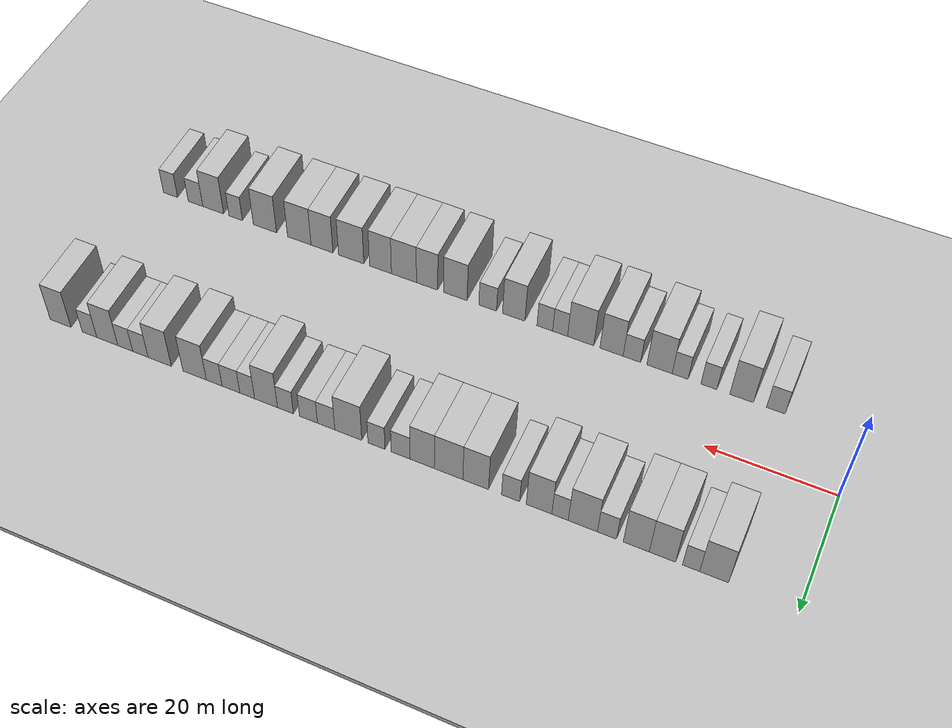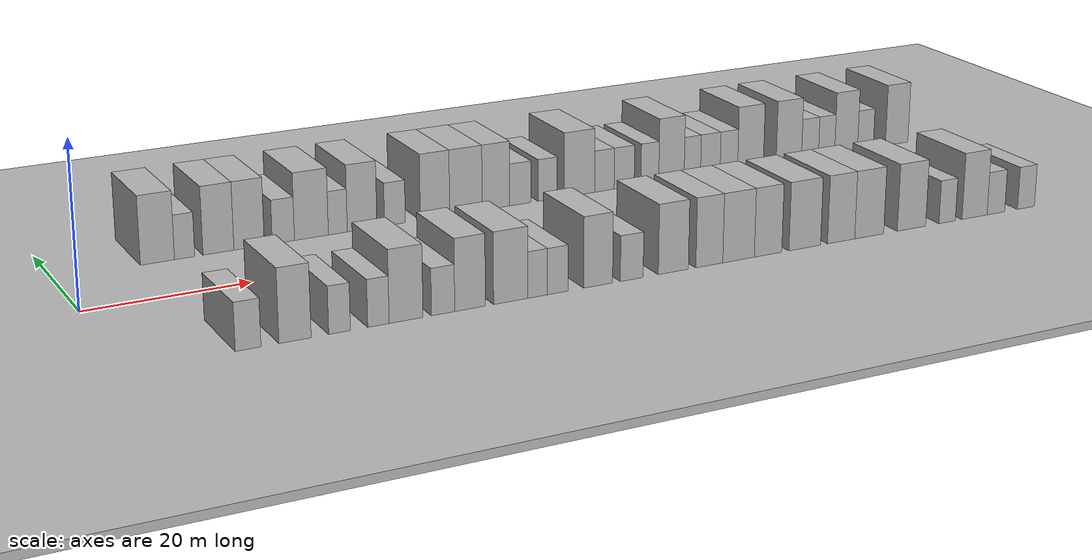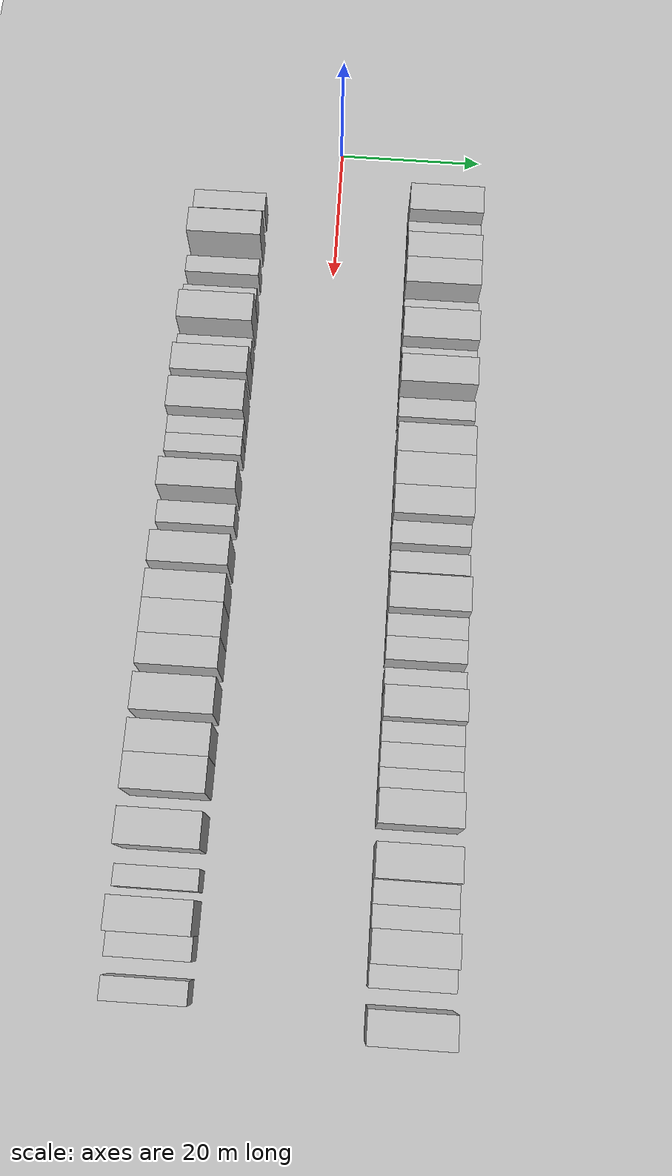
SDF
<sdf version="1.6">
 <world name="default">
  <include><name>ground_plane_1</name><uri>model://HANNAS_ground_plane</uri></include>
  <include>
   <name>ground_plane_2</name>
   <uri>model://HANNAS_ground_plane</uri>
   <pose>100 0 0  0 0 0</pose>
  </include>
  <model name="building_1">
   <static>1</static>
   <pose>12.0635 15.0000 0 0.000000 0.000000 1.570796</pose>
   <link name="link">
    <pose>0 0 4.50 0 0 0</pose>
    <collision name="collision"><geometry><box><size>10.0000 4.1269 9.0000</size></box></geometry></collision>
    <visual name="visual">
     <cast_shadows>0</cast_shadows>
     <geometry><box><size>10.0000 4.1269 9.0000</size></box></geometry>
     <material>
      <script>
       <uri>model://HANNAS_wall/materials/scripts</uri>
       <uri>model://HANNAS_wall/materials/textures</uri>
       <name>vrc/HANNAS_wall</name>
      </script>
     </material>
    </visual>
   </link>
  </model>
  <model name="building_2">
   <static>1</static>
   <pose>15.3622 15.0000 0 0.000000 0.000000 1.570796</pose>
   <link name="link">
    <pose>0 0 3.00 0 0 0</pose>
    <collision name="collision"><geometry><box><size>10.0000 2.4706 6.0000</size></box></geometry></collision>
    <visual name="visual">
     <cast_shadows>0</cast_shadows>
     <geometry><box><size>10.0000 2.4706 6.0000</size></box></geometry>
     <material>
      <script>
       <uri>model://HANNAS_wall/materials/scripts</uri>
       <uri>model://HANNAS_wall/materials/textures</uri>
       <name>vrc/HANNAS_wall</name>
      </script>
     </material>
    </visual>
   </link>
  </model>
  <model name="building_3">
   <static>1</static>
   <pose>19.5096 15.0000 0 0.000000 0.000000 1.570796</pose>
   <link name="link">
    <pose>0 0 4.50 0 0 0</pose>
    <collision name="collision"><geometry><box><size>10.0000 3.8242 9.0000</size></box></geometry></collision>
    <visual name="visual">
     <cast_shadows>0</cast_shadows>
     <geometry><box><size>10.0000 3.8242 9.0000</size></box></geometry>
     <material>
      <script>
       <uri>model://HANNAS_wall/materials/scripts</uri>
       <uri>model://HANNAS_wall/materials/textures</uri>
       <name>vrc/HANNAS_wall</name>
      </script>
     </material>
    </visual>
   </link>
  </model>
  <model name="building_4">
   <static>1</static>
   <pose>23.3249 15.0000 0 0.000000 0.000000 1.570796</pose>
   <link name="link">
    <pose>0 0 4.50 0 0 0</pose>
    <collision name="collision"><geometry><box><size>10.0000 3.8064 9.0000</size></box></geometry></collision>
    <visual name="visual">
     <cast_shadows>0</cast_shadows>
     <geometry><box><size>10.0000 3.8064 9.0000</size></box></geometry>
     <material>
      <script>
       <uri>model://HANNAS_wall/materials/scripts</uri>
       <uri>model://HANNAS_wall/materials/textures</uri>
       <name>vrc/HANNAS_wall</name>
      </script>
     </material>
    </visual>
   </link>
  </model>
  <model name="building_5">
   <static>1</static>
   <pose>27.6384 15.0000 0 0.000000 0.000000 1.570796</pose>
   <link name="link">
    <pose>0 0 3.00 0 0 0</pose>
    <collision name="collision"><geometry><box><size>10.0000 2.8205 6.0000</size></box></geometry></collision>
    <visual name="visual">
     <cast_shadows>0</cast_shadows>
     <geometry><box><size>10.0000 2.8205 6.0000</size></box></geometry>
     <material>
      <script>
       <uri>model://HANNAS_wall/materials/scripts</uri>
       <uri>model://HANNAS_wall/materials/textures</uri>
       <name>vrc/HANNAS_wall</name>
      </script>
     </material>
    </visual>
   </link>
  </model>
  <model name="building_6">
   <static>1</static>
   <pose>31.2251 15.0000 0 0.000000 0.000000 1.570796</pose>
   <link name="link">
    <pose>0 0 4.50 0 0 0</pose>
    <collision name="collision"><geometry><box><size>10.0000 4.3530 9.0000</size></box></geometry></collision>
    <visual name="visual">
     <cast_shadows>0</cast_shadows>
     <geometry><box><size>10.0000 4.3530 9.0000</size></box></geometry>
     <material>
      <script>
       <uri>model://HANNAS_wall/materials/scripts</uri>
       <uri>model://HANNAS_wall/materials/textures</uri>
       <name>vrc/HANNAS_wall</name>
      </script>
     </material>
    </visual>
   </link>
  </model>
  <model name="building_7">
   <static>1</static>
   <pose>34.6320 15.0000 0 0.000000 0.000000 1.570796</pose>
   <link name="link">
    <pose>0 0 3.00 0 0 0</pose>
    <collision name="collision"><geometry><box><size>10.0000 2.4608 6.0000</size></box></geometry></collision>
    <visual name="visual">
     <cast_shadows>0</cast_shadows>
     <geometry><box><size>10.0000 2.4608 6.0000</size></box></geometry>
     <material>
      <script>
       <uri>model://HANNAS_wall/materials/scripts</uri>
       <uri>model://HANNAS_wall/materials/textures</uri>
       <name>vrc/HANNAS_wall</name>
      </script>
     </material>
    </visual>
   </link>
  </model>
  <model name="building_8">
   <static>1</static>
   <pose>37.8067 15.0000 0 0.000000 0.000000 1.570796</pose>
   <link name="link">
    <pose>0 0 4.50 0 0 0</pose>
    <collision name="collision"><geometry><box><size>10.0000 3.8886 9.0000</size></box></geometry></collision>
    <visual name="visual">
     <cast_shadows>0</cast_shadows>
     <geometry><box><size>10.0000 3.8886 9.0000</size></box></geometry>
     <material>
      <script>
       <uri>model://HANNAS_wall/materials/scripts</uri>
       <uri>model://HANNAS_wall/materials/textures</uri>
       <name>vrc/HANNAS_wall</name>
      </script>
     </material>
    </visual>
   </link>
  </model>
  <model name="building_9">
   <static>1</static>
   <pose>42.1384 15.0000 0 0.000000 0.000000 1.570796</pose>
   <link name="link">
    <pose>0 0 3.00 0 0 0</pose>
    <collision name="collision"><geometry><box><size>10.0000 2.7749 6.0000</size></box></geometry></collision>
    <visual name="visual">
     <cast_shadows>0</cast_shadows>
     <geometry><box><size>10.0000 2.7749 6.0000</size></box></geometry>
     <material>
      <script>
       <uri>model://HANNAS_wall/materials/scripts</uri>
       <uri>model://HANNAS_wall/materials/textures</uri>
       <name>vrc/HANNAS_wall</name>
      </script>
     </material>
    </visual>
   </link>
  </model>
  <model name="building_10">
   <static>1</static>
   <pose>47.5163 15.0000 0 0.000000 0.000000 1.570796</pose>
   <link name="link">
    <pose>0 0 4.50 0 0 0</pose>
    <collision name="collision"><geometry><box><size>10.0000 3.9808 9.0000</size></box></geometry></collision>
    <visual name="visual">
     <cast_shadows>0</cast_shadows>
     <geometry><box><size>10.0000 3.9808 9.0000</size></box></geometry>
     <material>
      <script>
       <uri>model://HANNAS_wall/materials/scripts</uri>
       <uri>model://HANNAS_wall/materials/textures</uri>
       <name>vrc/HANNAS_wall</name>
      </script>
     </material>
    </visual>
   </link>
  </model>
  <model name="building_11">
   <static>1</static>
   <pose>51.7350 15.0000 0 0.000000 0.000000 1.570796</pose>
   <link name="link">
    <pose>0 0 4.50 0 0 0</pose>
    <collision name="collision"><geometry><box><size>10.0000 4.4566 9.0000</size></box></geometry></collision>
    <visual name="visual">
     <cast_shadows>0</cast_shadows>
     <geometry><box><size>10.0000 4.4566 9.0000</size></box></geometry>
     <material>
      <script>
       <uri>model://HANNAS_wall/materials/scripts</uri>
       <uri>model://HANNAS_wall/materials/textures</uri>
       <name>vrc/HANNAS_wall</name>
      </script>
     </material>
    </visual>
   </link>
  </model>
  <model name="building_12">
   <static>1</static>
   <pose>55.8778 15.0000 0 0.000000 0.000000 1.570796</pose>
   <link name="link">
    <pose>0 0 4.50 0 0 0</pose>
    <collision name="collision"><geometry><box><size>10.0000 3.8290 9.0000</size></box></geometry></collision>
    <visual name="visual">
     <cast_shadows>0</cast_shadows>
     <geometry><box><size>10.0000 3.8290 9.0000</size></box></geometry>
     <material>
      <script>
       <uri>model://HANNAS_wall/materials/scripts</uri>
       <uri>model://HANNAS_wall/materials/textures</uri>
       <name>vrc/HANNAS_wall</name>
      </script>
     </material>
    </visual>
   </link>
  </model>
  <model name="building_13">
   <static>1</static>
   <pose>59.2881 15.0000 0 0.000000 0.000000 1.570796</pose>
   <link name="link">
    <pose>0 0 3.00 0 0 0</pose>
    <collision name="collision"><geometry><box><size>10.0000 2.9917 6.0000</size></box></geometry></collision>
    <visual name="visual">
     <cast_shadows>0</cast_shadows>
     <geometry><box><size>10.0000 2.9917 6.0000</size></box></geometry>
     <material>
      <script>
       <uri>model://HANNAS_wall/materials/scripts</uri>
       <uri>model://HANNAS_wall/materials/textures</uri>
       <name>vrc/HANNAS_wall</name>
      </script>
     </material>
    </visual>
   </link>
  </model>
  <model name="building_14">
   <static>1</static>
   <pose>63.1467 15.0000 0 0.000000 0.000000 1.570796</pose>
   <link name="link">
    <pose>0 0 3.00 0 0 0</pose>
    <collision name="collision"><geometry><box><size>10.0000 2.7255 6.0000</size></box></geometry></collision>
    <visual name="visual">
     <cast_shadows>0</cast_shadows>
     <geometry><box><size>10.0000 2.7255 6.0000</size></box></geometry>
     <material>
      <script>
       <uri>model://HANNAS_wall/materials/scripts</uri>
       <uri>model://HANNAS_wall/materials/textures</uri>
       <name>vrc/HANNAS_wall</name>
      </script>
     </material>
    </visual>
   </link>
  </model>
  <model name="building_15">
   <static>1</static>
   <pose>67.6965 15.0000 0 0.000000 0.000000 1.570796</pose>
   <link name="link">
    <pose>0 0 4.50 0 0 0</pose>
    <collision name="collision"><geometry><box><size>10.0000 4.3741 9.0000</size></box></geometry></collision>
    <visual name="visual">
     <cast_shadows>0</cast_shadows>
     <geometry><box><size>10.0000 4.3741 9.0000</size></box></geometry>
     <material>
      <script>
       <uri>model://HANNAS_wall/materials/scripts</uri>
       <uri>model://HANNAS_wall/materials/textures</uri>
       <name>vrc/HANNAS_wall</name>
      </script>
     </material>
    </visual>
   </link>
  </model>
  <model name="building_16">
   <static>1</static>
   <pose>71.3023 15.0000 0 0.000000 0.000000 1.570796</pose>
   <link name="link">
    <pose>0 0 3.00 0 0 0</pose>
    <collision name="collision"><geometry><box><size>10.0000 2.8375 6.0000</size></box></geometry></collision>
    <visual name="visual">
     <cast_shadows>0</cast_shadows>
     <geometry><box><size>10.0000 2.8375 6.0000</size></box></geometry>
     <material>
      <script>
       <uri>model://HANNAS_wall/materials/scripts</uri>
       <uri>model://HANNAS_wall/materials/textures</uri>
       <name>vrc/HANNAS_wall</name>
      </script>
     </material>
    </visual>
   </link>
  </model>
  <model name="building_17">
   <static>1</static>
   <pose>74.1997 15.0000 0 0.000000 0.000000 1.570796</pose>
   <link name="link">
    <pose>0 0 3.00 0 0 0</pose>
    <collision name="collision"><geometry><box><size>10.0000 2.9573 6.0000</size></box></geometry></collision>
    <visual name="visual">
     <cast_shadows>0</cast_shadows>
     <geometry><box><size>10.0000 2.9573 6.0000</size></box></geometry>
     <material>
      <script>
       <uri>model://HANNAS_wall/materials/scripts</uri>
       <uri>model://HANNAS_wall/materials/textures</uri>
       <name>vrc/HANNAS_wall</name>
      </script>
     </material>
    </visual>
   </link>
  </model>
  <model name="building_18">
   <static>1</static>
   <pose>78.0015 15.0000 0 0.000000 0.000000 1.570796</pose>
   <link name="link">
    <pose>0 0 3.00 0 0 0</pose>
    <collision name="collision"><geometry><box><size>10.0000 2.6463 6.0000</size></box></geometry></collision>
    <visual name="visual">
     <cast_shadows>0</cast_shadows>
     <geometry><box><size>10.0000 2.6463 6.0000</size></box></geometry>
     <material>
      <script>
       <uri>model://HANNAS_wall/materials/scripts</uri>
       <uri>model://HANNAS_wall/materials/textures</uri>
       <name>vrc/HANNAS_wall</name>
      </script>
     </material>
    </visual>
   </link>
  </model>
  <model name="building_19">
   <static>1</static>
   <pose>81.2366 15.0000 0 0.000000 0.000000 1.570796</pose>
   <link name="link">
    <pose>0 0 4.50 0 0 0</pose>
    <collision name="collision"><geometry><box><size>10.0000 3.8238 9.0000</size></box></geometry></collision>
    <visual name="visual">
     <cast_shadows>0</cast_shadows>
     <geometry><box><size>10.0000 3.8238 9.0000</size></box></geometry>
     <material>
      <script>
       <uri>model://HANNAS_wall/materials/scripts</uri>
       <uri>model://HANNAS_wall/materials/textures</uri>
       <name>vrc/HANNAS_wall</name>
      </script>
     </material>
    </visual>
   </link>
  </model>
  <model name="building_20">
   <static>1</static>
   <pose>84.3906 15.0000 0 0.000000 0.000000 1.570796</pose>
   <link name="link">
    <pose>0 0 3.00 0 0 0</pose>
    <collision name="collision"><geometry><box><size>10.0000 2.4841 6.0000</size></box></geometry></collision>
    <visual name="visual">
     <cast_shadows>0</cast_shadows>
     <geometry><box><size>10.0000 2.4841 6.0000</size></box></geometry>
     <material>
      <script>
       <uri>model://HANNAS_wall/materials/scripts</uri>
       <uri>model://HANNAS_wall/materials/textures</uri>
       <name>vrc/HANNAS_wall</name>
      </script>
     </material>
    </visual>
   </link>
  </model>
  <model name="building_21">
   <static>1</static>
   <pose>87.1256 15.0000 0 0.000000 0.000000 1.570796</pose>
   <link name="link">
    <pose>0 0 3.00 0 0 0</pose>
    <collision name="collision"><geometry><box><size>10.0000 2.9860 6.0000</size></box></geometry></collision>
    <visual name="visual">
     <cast_shadows>0</cast_shadows>
     <geometry><box><size>10.0000 2.9860 6.0000</size></box></geometry>
     <material>
      <script>
       <uri>model://HANNAS_wall/materials/scripts</uri>
       <uri>model://HANNAS_wall/materials/textures</uri>
       <name>vrc/HANNAS_wall</name>
      </script>
     </material>
    </visual>
   </link>
  </model>
  <model name="building_22">
   <static>1</static>
   <pose>89.9670 15.0000 0 0.000000 0.000000 1.570796</pose>
   <link name="link">
    <pose>0 0 3.00 0 0 0</pose>
    <collision name="collision"><geometry><box><size>10.0000 2.6968 6.0000</size></box></geometry></collision>
    <visual name="visual">
     <cast_shadows>0</cast_shadows>
     <geometry><box><size>10.0000 2.6968 6.0000</size></box></geometry>
     <material>
      <script>
       <uri>model://HANNAS_wall/materials/scripts</uri>
       <uri>model://HANNAS_wall/materials/textures</uri>
       <name>vrc/HANNAS_wall</name>
      </script>
     </material>
    </visual>
   </link>
  </model>
  <model name="building_23">
   <static>1</static>
   <pose>93.3270 15.0000 0 0.000000 0.000000 1.570796</pose>
   <link name="link">
    <pose>0 0 4.50 0 0 0</pose>
    <collision name="collision"><geometry><box><size>10.0000 4.0232 9.0000</size></box></geometry></collision>
    <visual name="visual">
     <cast_shadows>0</cast_shadows>
     <geometry><box><size>10.0000 4.0232 9.0000</size></box></geometry>
     <material>
      <script>
       <uri>model://HANNAS_wall/materials/scripts</uri>
       <uri>model://HANNAS_wall/materials/textures</uri>
       <name>vrc/HANNAS_wall</name>
      </script>
     </material>
    </visual>
   </link>
  </model>
  <model name="building_24">
   <static>1</static>
   <pose>99.3500 15.0000 0 0.000000 0.000000 1.570796</pose>
   <link name="link">
    <pose>0 0 4.50 0 0 0</pose>
    <collision name="collision"><geometry><box><size>10.0000 4.0227 9.0000</size></box></geometry></collision>
    <visual name="visual">
     <cast_shadows>0</cast_shadows>
     <geometry><box><size>10.0000 4.0227 9.0000</size></box></geometry>
     <material>
      <script>
       <uri>model://HANNAS_wall/materials/scripts</uri>
       <uri>model://HANNAS_wall/materials/textures</uri>
       <name>vrc/HANNAS_wall</name>
      </script>
     </material>
    </visual>
   </link>
  </model>
  <model name="building_25">
   <static>1</static>
   <pose>102.7177 15.0000 0 0.000000 0.000000 1.570796</pose>
   <link name="link">
    <pose>0 0 3.00 0 0 0</pose>
    <collision name="collision"><geometry><box><size>10.0000 2.7128 6.0000</size></box></geometry></collision>
    <visual name="visual">
     <cast_shadows>0</cast_shadows>
     <geometry><box><size>10.0000 2.7128 6.0000</size></box></geometry>
     <material>
      <script>
       <uri>model://HANNAS_wall/materials/scripts</uri>
       <uri>model://HANNAS_wall/materials/textures</uri>
       <name>vrc/HANNAS_wall</name>
      </script>
     </material>
    </visual>
   </link>
  </model>
  <model name="building_26">
   <static>1</static>
   <pose>105.3841 15.0000 0 0.000000 0.000000 1.570796</pose>
   <link name="link">
    <pose>0 0 3.00 0 0 0</pose>
    <collision name="collision"><geometry><box><size>10.0000 2.6202 6.0000</size></box></geometry></collision>
    <visual name="visual">
     <cast_shadows>0</cast_shadows>
     <geometry><box><size>10.0000 2.6202 6.0000</size></box></geometry>
     <material>
      <script>
       <uri>model://HANNAS_wall/materials/scripts</uri>
       <uri>model://HANNAS_wall/materials/textures</uri>
       <name>vrc/HANNAS_wall</name>
      </script>
     </material>
    </visual>
   </link>
  </model>
  <model name="building_27">
   <static>1</static>
   <pose>108.5547 15.0000 0 0.000000 0.000000 1.570796</pose>
   <link name="link">
    <pose>0 0 4.50 0 0 0</pose>
    <collision name="collision"><geometry><box><size>10.0000 3.7210 9.0000</size></box></geometry></collision>
    <visual name="visual">
     <cast_shadows>0</cast_shadows>
     <geometry><box><size>10.0000 3.7210 9.0000</size></box></geometry>
     <material>
      <script>
       <uri>model://HANNAS_wall/materials/scripts</uri>
       <uri>model://HANNAS_wall/materials/textures</uri>
       <name>vrc/HANNAS_wall</name>
      </script>
     </material>
    </visual>
   </link>
  </model>
  <model name="building_28">
   <static>1</static>
   <pose>111.7187 15.0000 0 0.000000 0.000000 1.570796</pose>
   <link name="link">
    <pose>0 0 3.00 0 0 0</pose>
    <collision name="collision"><geometry><box><size>10.0000 2.6071 6.0000</size></box></geometry></collision>
    <visual name="visual">
     <cast_shadows>0</cast_shadows>
     <geometry><box><size>10.0000 2.6071 6.0000</size></box></geometry>
     <material>
      <script>
       <uri>model://HANNAS_wall/materials/scripts</uri>
       <uri>model://HANNAS_wall/materials/textures</uri>
       <name>vrc/HANNAS_wall</name>
      </script>
     </material>
    </visual>
   </link>
  </model>
  <model name="building_29">
   <static>1</static>
   <pose>116.8964 15.0000 0 0.000000 0.000000 1.570796</pose>
   <link name="link">
    <pose>0 0 4.50 0 0 0</pose>
    <collision name="collision"><geometry><box><size>10.0000 3.7483 9.0000</size></box></geometry></collision>
    <visual name="visual">
     <cast_shadows>0</cast_shadows>
     <geometry><box><size>10.0000 3.7483 9.0000</size></box></geometry>
     <material>
      <script>
       <uri>model://HANNAS_wall/materials/scripts</uri>
       <uri>model://HANNAS_wall/materials/textures</uri>
       <name>vrc/HANNAS_wall</name>
      </script>
     </material>
    </visual>
   </link>
  </model>
  <model name="building_56">
   <static>1</static>
   <pose>12.4276 -15.0000 0 0.000000 0.000000 1.570796</pose>
   <link name="link">
    <pose>0 0 3.00 0 0 0</pose>
    <collision name="collision"><geometry><box><size>10.0000 2.8552 6.0000</size></box></geometry></collision>
    <visual name="visual">
     <cast_shadows>0</cast_shadows>
     <geometry><box><size>10.0000 2.8552 6.0000</size></box></geometry>
     <material>
      <script>
       <uri>model://HANNAS_wall/materials/scripts</uri>
       <uri>model://HANNAS_wall/materials/textures</uri>
       <name>vrc/HANNAS_wall</name>
      </script>
     </material>
    </visual>
   </link>
  </model>
  <model name="building_57">
   <static>1</static>
   <pose>17.6760 -15.0000 0 0.000000 0.000000 1.570796</pose>
   <link name="link">
    <pose>0 0 4.50 0 0 0</pose>
    <collision name="collision"><geometry><box><size>10.0000 3.6416 9.0000</size></box></geometry></collision>
    <visual name="visual">
     <cast_shadows>0</cast_shadows>
     <geometry><box><size>10.0000 3.6416 9.0000</size></box></geometry>
     <material>
      <script>
       <uri>model://HANNAS_wall/materials/scripts</uri>
       <uri>model://HANNAS_wall/materials/textures</uri>
       <name>vrc/HANNAS_wall</name>
      </script>
     </material>
    </visual>
   </link>
  </model>
  <model name="building_58">
   <static>1</static>
   <pose>22.7484 -15.0000 0 0.000000 0.000000 1.570796</pose>
   <link name="link">
    <pose>0 0 3.00 0 0 0</pose>
    <collision name="collision"><geometry><box><size>10.0000 2.5031 6.0000</size></box></geometry></collision>
    <visual name="visual">
     <cast_shadows>0</cast_shadows>
     <geometry><box><size>10.0000 2.5031 6.0000</size></box></geometry>
     <material>
      <script>
       <uri>model://HANNAS_wall/materials/scripts</uri>
       <uri>model://HANNAS_wall/materials/textures</uri>
       <name>vrc/HANNAS_wall</name>
      </script>
     </material>
    </visual>
   </link>
  </model>
  <model name="building_59">
   <static>1</static>
   <pose>27.2496 -15.0000 0 0.000000 0.000000 1.570796</pose>
   <link name="link">
    <pose>0 0 3.00 0 0 0</pose>
    <collision name="collision"><geometry><box><size>10.0000 2.4995 6.0000</size></box></geometry></collision>
    <visual name="visual">
     <cast_shadows>0</cast_shadows>
     <geometry><box><size>10.0000 2.4995 6.0000</size></box></geometry>
     <material>
      <script>
       <uri>model://HANNAS_wall/materials/scripts</uri>
       <uri>model://HANNAS_wall/materials/textures</uri>
       <name>vrc/HANNAS_wall</name>
      </script>
     </material>
    </visual>
   </link>
  </model>
  <model name="building_60">
   <static>1</static>
   <pose>30.5056 -15.0000 0 0.000000 0.000000 1.570796</pose>
   <link name="link">
    <pose>0 0 4.50 0 0 0</pose>
    <collision name="collision"><geometry><box><size>10.0000 4.0126 9.0000</size></box></geometry></collision>
    <visual name="visual">
     <cast_shadows>0</cast_shadows>
     <geometry><box><size>10.0000 4.0126 9.0000</size></box></geometry>
     <material>
      <script>
       <uri>model://HANNAS_wall/materials/scripts</uri>
       <uri>model://HANNAS_wall/materials/textures</uri>
       <name>vrc/HANNAS_wall</name>
      </script>
     </material>
    </visual>
   </link>
  </model>
  <model name="building_61">
   <static>1</static>
   <pose>34.9126 -15.0000 0 0.000000 0.000000 1.570796</pose>
   <link name="link">
    <pose>0 0 3.00 0 0 0</pose>
    <collision name="collision"><geometry><box><size>10.0000 2.8013 6.0000</size></box></geometry></collision>
    <visual name="visual">
     <cast_shadows>0</cast_shadows>
     <geometry><box><size>10.0000 2.8013 6.0000</size></box></geometry>
     <material>
      <script>
       <uri>model://HANNAS_wall/materials/scripts</uri>
       <uri>model://HANNAS_wall/materials/textures</uri>
       <name>vrc/HANNAS_wall</name>
      </script>
     </material>
    </visual>
   </link>
  </model>
  <model name="building_62">
   <static>1</static>
   <pose>38.1787 -15.0000 0 0.000000 0.000000 1.570796</pose>
   <link name="link">
    <pose>0 0 4.50 0 0 0</pose>
    <collision name="collision"><geometry><box><size>10.0000 3.7309 9.0000</size></box></geometry></collision>
    <visual name="visual">
     <cast_shadows>0</cast_shadows>
     <geometry><box><size>10.0000 3.7309 9.0000</size></box></geometry>
     <material>
      <script>
       <uri>model://HANNAS_wall/materials/scripts</uri>
       <uri>model://HANNAS_wall/materials/textures</uri>
       <name>vrc/HANNAS_wall</name>
      </script>
     </material>
    </visual>
   </link>
  </model>
  <model name="building_63">
   <static>1</static>
   <pose>43.1730 -15.0000 0 0.000000 0.000000 1.570796</pose>
   <link name="link">
    <pose>0 0 4.50 0 0 0</pose>
    <collision name="collision"><geometry><box><size>10.0000 4.2577 9.0000</size></box></geometry></collision>
    <visual name="visual">
     <cast_shadows>0</cast_shadows>
     <geometry><box><size>10.0000 4.2577 9.0000</size></box></geometry>
     <material>
      <script>
       <uri>model://HANNAS_wall/materials/scripts</uri>
       <uri>model://HANNAS_wall/materials/textures</uri>
       <name>vrc/HANNAS_wall</name>
      </script>
     </material>
    </visual>
   </link>
  </model>
  <model name="building_64">
   <static>1</static>
   <pose>46.5241 -15.0000 0 0.000000 0.000000 1.570796</pose>
   <link name="link">
    <pose>0 0 3.00 0 0 0</pose>
    <collision name="collision"><geometry><box><size>10.0000 2.4445 6.0000</size></box></geometry></collision>
    <visual name="visual">
     <cast_shadows>0</cast_shadows>
     <geometry><box><size>10.0000 2.4445 6.0000</size></box></geometry>
     <material>
      <script>
       <uri>model://HANNAS_wall/materials/scripts</uri>
       <uri>model://HANNAS_wall/materials/textures</uri>
       <name>vrc/HANNAS_wall</name>
      </script>
     </material>
    </visual>
   </link>
  </model>
  <model name="building_65">
   <static>1</static>
   <pose>49.0389 -15.0000 0 0.000000 0.000000 1.570796</pose>
   <link name="link">
    <pose>0 0 3.00 0 0 0</pose>
    <collision name="collision"><geometry><box><size>10.0000 2.5851 6.0000</size></box></geometry></collision>
    <visual name="visual">
     <cast_shadows>0</cast_shadows>
     <geometry><box><size>10.0000 2.5851 6.0000</size></box></geometry>
     <material>
      <script>
       <uri>model://HANNAS_wall/materials/scripts</uri>
       <uri>model://HANNAS_wall/materials/textures</uri>
       <name>vrc/HANNAS_wall</name>
      </script>
     </material>
    </visual>
   </link>
  </model>
  <model name="building_66">
   <static>1</static>
   <pose>54.1942 -15.0000 0 0.000000 0.000000 1.570796</pose>
   <link name="link">
    <pose>0 0 4.50 0 0 0</pose>
    <collision name="collision"><geometry><box><size>10.0000 3.7256 9.0000</size></box></geometry></collision>
    <visual name="visual">
     <cast_shadows>0</cast_shadows>
     <geometry><box><size>10.0000 3.7256 9.0000</size></box></geometry>
     <material>
      <script>
       <uri>model://HANNAS_wall/materials/scripts</uri>
       <uri>model://HANNAS_wall/materials/textures</uri>
       <name>vrc/HANNAS_wall</name>
      </script>
     </material>
    </visual>
   </link>
  </model>
  <model name="building_67">
   <static>1</static>
   <pose>58.5437 -15.0000 0 0.000000 0.000000 1.570796</pose>
   <link name="link">
    <pose>0 0 3.00 0 0 0</pose>
    <collision name="collision"><geometry><box><size>10.0000 2.9735 6.0000</size></box></geometry></collision>
    <visual name="visual">
     <cast_shadows>0</cast_shadows>
     <geometry><box><size>10.0000 2.9735 6.0000</size></box></geometry>
     <material>
      <script>
       <uri>model://HANNAS_wall/materials/scripts</uri>
       <uri>model://HANNAS_wall/materials/textures</uri>
       <name>vrc/HANNAS_wall</name>
      </script>
     </material>
    </visual>
   </link>
  </model>
  <model name="building_68">
   <static>1</static>
   <pose>64.0316 -15.0000 0 0.000000 0.000000 1.570796</pose>
   <link name="link">
    <pose>0 0 4.50 0 0 0</pose>
    <collision name="collision"><geometry><box><size>10.0000 4.0022 9.0000</size></box></geometry></collision>
    <visual name="visual">
     <cast_shadows>0</cast_shadows>
     <geometry><box><size>10.0000 4.0022 9.0000</size></box></geometry>
     <material>
      <script>
       <uri>model://HANNAS_wall/materials/scripts</uri>
       <uri>model://HANNAS_wall/materials/textures</uri>
       <name>vrc/HANNAS_wall</name>
      </script>
     </material>
    </visual>
   </link>
  </model>
  <model name="building_69">
   <static>1</static>
   <pose>68.8542 -15.0000 0 0.000000 0.000000 1.570796</pose>
   <link name="link">
    <pose>0 0 4.50 0 0 0</pose>
    <collision name="collision"><geometry><box><size>10.0000 3.6429 9.0000</size></box></geometry></collision>
    <visual name="visual">
     <cast_shadows>0</cast_shadows>
     <geometry><box><size>10.0000 3.6429 9.0000</size></box></geometry>
     <material>
      <script>
       <uri>model://HANNAS_wall/materials/scripts</uri>
       <uri>model://HANNAS_wall/materials/textures</uri>
       <name>vrc/HANNAS_wall</name>
      </script>
     </material>
    </visual>
   </link>
  </model>
  <model name="building_70">
   <static>1</static>
   <pose>72.8383 -15.0000 0 0.000000 0.000000 1.570796</pose>
   <link name="link">
    <pose>0 0 4.50 0 0 0</pose>
    <collision name="collision"><geometry><box><size>10.0000 4.3254 9.0000</size></box></geometry></collision>
    <visual name="visual">
     <cast_shadows>0</cast_shadows>
     <geometry><box><size>10.0000 4.3254 9.0000</size></box></geometry>
     <material>
      <script>
       <uri>model://HANNAS_wall/materials/scripts</uri>
       <uri>model://HANNAS_wall/materials/textures</uri>
       <name>vrc/HANNAS_wall</name>
      </script>
     </material>
    </visual>
   </link>
  </model>
  <model name="building_71">
   <static>1</static>
   <pose>76.9110 -15.0000 0 0.000000 0.000000 1.570796</pose>
   <link name="link">
    <pose>0 0 4.50 0 0 0</pose>
    <collision name="collision"><geometry><box><size>10.0000 3.8201 9.0000</size></box></geometry></collision>
    <visual name="visual">
     <cast_shadows>0</cast_shadows>
     <geometry><box><size>10.0000 3.8201 9.0000</size></box></geometry>
     <material>
      <script>
       <uri>model://HANNAS_wall/materials/scripts</uri>
       <uri>model://HANNAS_wall/materials/textures</uri>
       <name>vrc/HANNAS_wall</name>
      </script>
     </material>
    </visual>
   </link>
  </model>
  <model name="building_72">
   <static>1</static>
   <pose>82.0539 -15.0000 0 0.000000 0.000000 1.570796</pose>
   <link name="link">
    <pose>0 0 4.50 0 0 0</pose>
    <collision name="collision"><geometry><box><size>10.0000 4.4656 9.0000</size></box></geometry></collision>
    <visual name="visual">
     <cast_shadows>0</cast_shadows>
     <geometry><box><size>10.0000 4.4656 9.0000</size></box></geometry>
     <material>
      <script>
       <uri>model://HANNAS_wall/materials/scripts</uri>
       <uri>model://HANNAS_wall/materials/textures</uri>
       <name>vrc/HANNAS_wall</name>
      </script>
     </material>
    </visual>
   </link>
  </model>
  <model name="building_73">
   <static>1</static>
   <pose>87.2383 -15.0000 0 0.000000 0.000000 1.570796</pose>
   <link name="link">
    <pose>0 0 4.50 0 0 0</pose>
    <collision name="collision"><geometry><box><size>10.0000 3.9032 9.0000</size></box></geometry></collision>
    <visual name="visual">
     <cast_shadows>0</cast_shadows>
     <geometry><box><size>10.0000 3.9032 9.0000</size></box></geometry>
     <material>
      <script>
       <uri>model://HANNAS_wall/materials/scripts</uri>
       <uri>model://HANNAS_wall/materials/textures</uri>
       <name>vrc/HANNAS_wall</name>
      </script>
     </material>
    </visual>
   </link>
  </model>
  <model name="building_74">
   <static>1</static>
   <pose>91.3028 -15.0000 0 0.000000 0.000000 1.570796</pose>
   <link name="link">
    <pose>0 0 4.50 0 0 0</pose>
    <collision name="collision"><geometry><box><size>10.0000 4.2258 9.0000</size></box></geometry></collision>
    <visual name="visual">
     <cast_shadows>0</cast_shadows>
     <geometry><box><size>10.0000 4.2258 9.0000</size></box></geometry>
     <material>
      <script>
       <uri>model://HANNAS_wall/materials/scripts</uri>
       <uri>model://HANNAS_wall/materials/textures</uri>
       <name>vrc/HANNAS_wall</name>
      </script>
     </material>
    </visual>
   </link>
  </model>
  <model name="building_75">
   <static>1</static>
   <pose>97.5281 -15.0000 0 0.000000 0.000000 1.570796</pose>
   <link name="link">
    <pose>0 0 4.50 0 0 0</pose>
    <collision name="collision"><geometry><box><size>10.0000 4.2249 9.0000</size></box></geometry></collision>
    <visual name="visual">
     <cast_shadows>0</cast_shadows>
     <geometry><box><size>10.0000 4.2249 9.0000</size></box></geometry>
     <material>
      <script>
       <uri>model://HANNAS_wall/materials/scripts</uri>
       <uri>model://HANNAS_wall/materials/textures</uri>
       <name>vrc/HANNAS_wall</name>
      </script>
     </material>
    </visual>
   </link>
  </model>
  <model name="building_76">
   <static>1</static>
   <pose>102.8810 -15.0000 0 0.000000 0.000000 1.570796</pose>
   <link name="link">
    <pose>0 0 3.00 0 0 0</pose>
    <collision name="collision"><geometry><box><size>10.0000 2.4808 6.0000</size></box></geometry></collision>
    <visual name="visual">
     <cast_shadows>0</cast_shadows>
     <geometry><box><size>10.0000 2.4808 6.0000</size></box></geometry>
     <material>
      <script>
       <uri>model://HANNAS_wall/materials/scripts</uri>
       <uri>model://HANNAS_wall/materials/textures</uri>
       <name>vrc/HANNAS_wall</name>
      </script>
     </material>
    </visual>
   </link>
  </model>
  <model name="building_77">
   <static>1</static>
   <pose>107.0484 -15.0000 0 0.000000 0.000000 1.570796</pose>
   <link name="link">
    <pose>0 0 4.50 0 0 0</pose>
    <collision name="collision"><geometry><box><size>10.0000 3.8540 9.0000</size></box></geometry></collision>
    <visual name="visual">
     <cast_shadows>0</cast_shadows>
     <geometry><box><size>10.0000 3.8540 9.0000</size></box></geometry>
     <material>
      <script>
       <uri>model://HANNAS_wall/materials/scripts</uri>
       <uri>model://HANNAS_wall/materials/textures</uri>
       <name>vrc/HANNAS_wall</name>
      </script>
     </material>
    </visual>
   </link>
  </model>
  <model name="building_78">
   <static>1</static>
   <pose>110.3387 -15.0000 0 0.000000 0.000000 1.570796</pose>
   <link name="link">
    <pose>0 0 3.00 0 0 0</pose>
    <collision name="collision"><geometry><box><size>10.0000 2.7267 6.0000</size></box></geometry></collision>
    <visual name="visual">
     <cast_shadows>0</cast_shadows>
     <geometry><box><size>10.0000 2.7267 6.0000</size></box></geometry>
     <material>
      <script>
       <uri>model://HANNAS_wall/materials/scripts</uri>
       <uri>model://HANNAS_wall/materials/textures</uri>
       <name>vrc/HANNAS_wall</name>
      </script>
     </material>
    </visual>
   </link>
  </model>
  <model name="building_79">
   <static>1</static>
   <pose>115.0309 -15.0000 0 0.000000 0.000000 1.570796</pose>
   <link name="link">
    <pose>0 0 3.00 0 0 0</pose>
    <collision name="collision"><geometry><box><size>10.0000 2.6576 6.0000</size></box></geometry></collision>
    <visual name="visual">
     <cast_shadows>0</cast_shadows>
     <geometry><box><size>10.0000 2.6576 6.0000</size></box></geometry>
     <material>
      <script>
       <uri>model://HANNAS_wall/materials/scripts</uri>
       <uri>model://HANNAS_wall/materials/textures</uri>
       <name>vrc/HANNAS_wall</name>
      </script>
     </material>
    </visual>
   </link>
  </model>
 </world>
</sdf>
